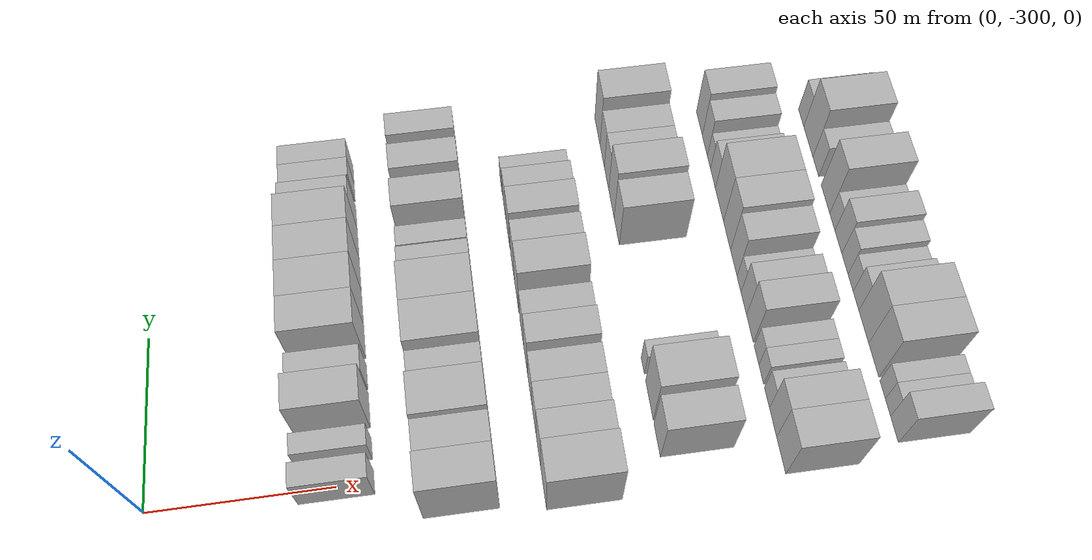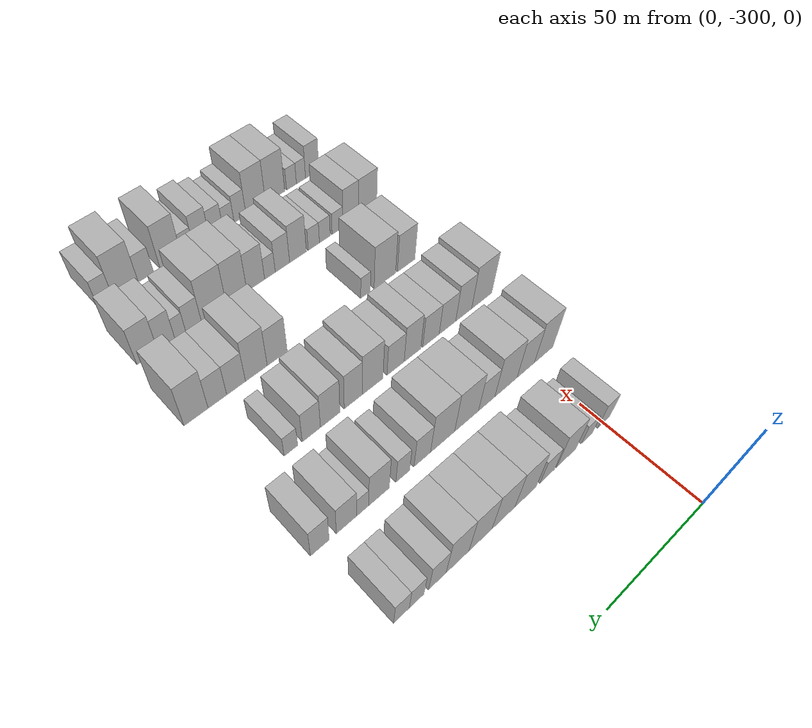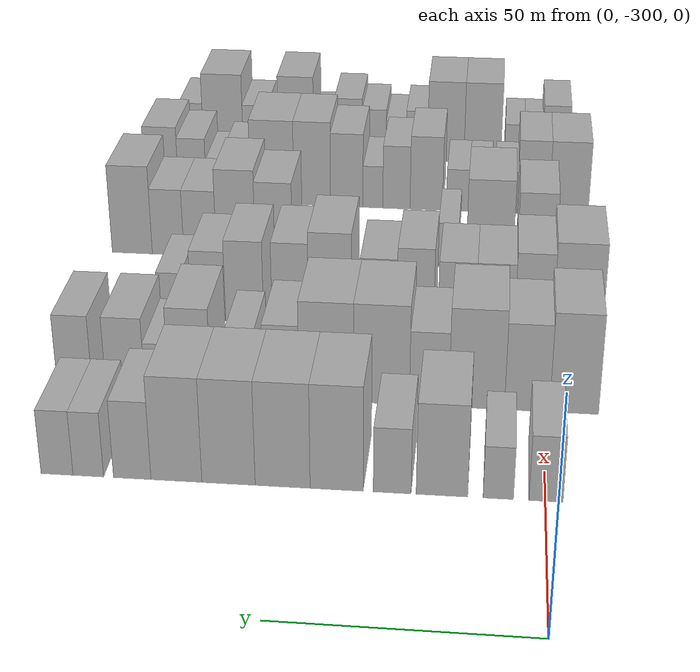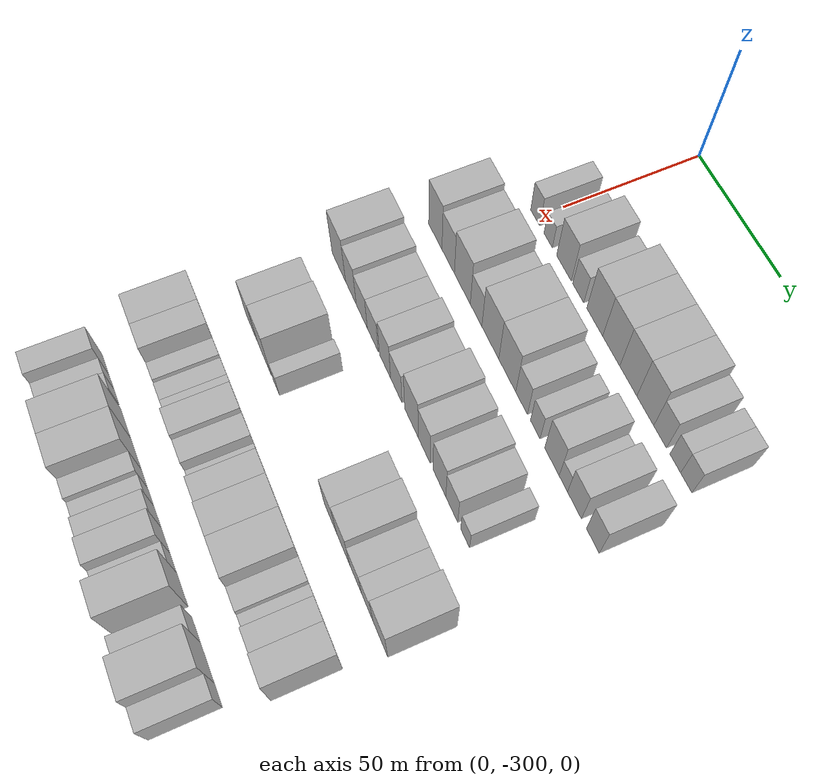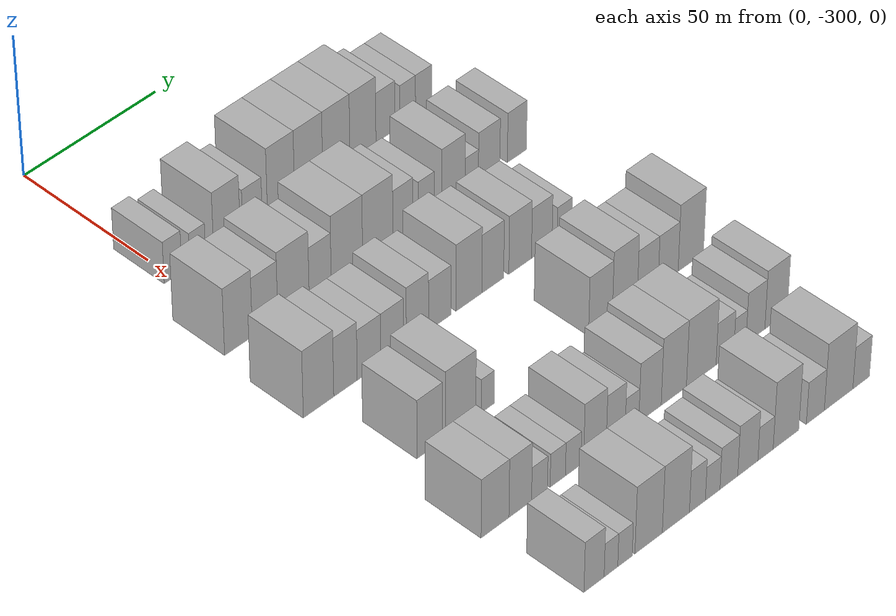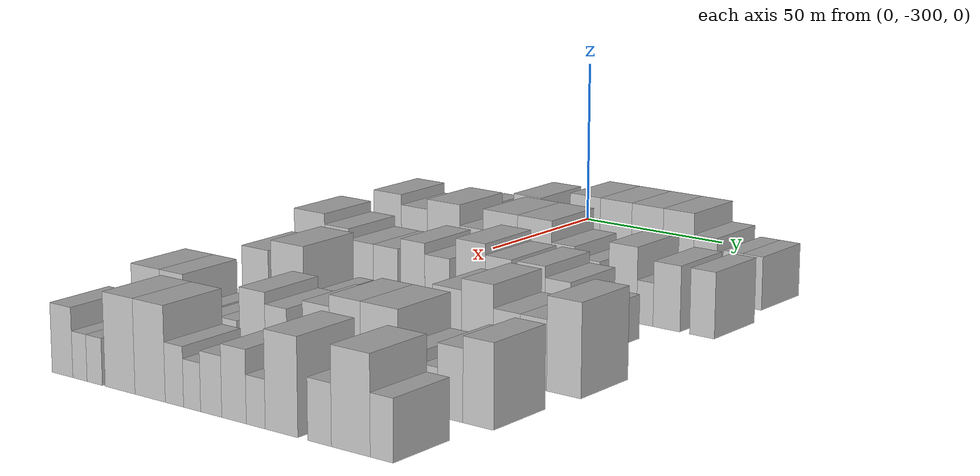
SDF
<sdf version="1.6">
 <world name="default">
  <model name="building_26">
   <static>1</static>
   <pose>50.0000 -300.0668 0 0.000000 0.000000 0.000000</pose>
   <link name="link">
    <pose>0 0 7.50 0 0 0</pose>
    <collision name="collision"><geometry><box><size>20.0000 6.5799 15.0000</size></box></geometry></collision>
    <visual name="visual">
     <cast_shadows>0</cast_shadows>
     <geometry><box><size>20.0000 6.5799 15.0000</size></box></geometry>
     <material>
      <script>
       <uri>model://HANNAS_wall/materials/scripts</uri>
       <uri>model://HANNAS_wall/materials/textures</uri>
       <name>vrc/HANNAS_wall</name>
      </script>
     </material>
    </visual>
   </link>
  </model>
  <model name="building_27">
   <static>1</static>
   <pose>50.0000 -290.8324 0 0.000000 0.000000 0.000000</pose>
   <link name="link">
    <pose>0 0 6.00 0 0 0</pose>
    <collision name="collision"><geometry><box><size>20.0000 5.8889 12.0000</size></box></geometry></collision>
    <visual name="visual">
     <cast_shadows>0</cast_shadows>
     <geometry><box><size>20.0000 5.8889 12.0000</size></box></geometry>
     <material>
      <script>
       <uri>model://HANNAS_wall/materials/scripts</uri>
       <uri>model://HANNAS_wall/materials/textures</uri>
       <name>vrc/HANNAS_wall</name>
      </script>
     </material>
    </visual>
   </link>
  </model>
  <model name="building_28">
   <static>1</static>
   <pose>50.0000 -279.8640 0 0.000000 0.000000 0.000000</pose>
   <link name="link">
    <pose>0 0 10.50 0 0 0</pose>
    <collision name="collision"><geometry><box><size>20.0000 10.0480 21.0000</size></box></geometry></collision>
    <visual name="visual">
     <cast_shadows>0</cast_shadows>
     <geometry><box><size>20.0000 10.0480 21.0000</size></box></geometry>
     <material>
      <script>
       <uri>model://HANNAS_wall/materials/scripts</uri>
       <uri>model://HANNAS_wall/materials/textures</uri>
       <name>vrc/HANNAS_wall</name>
      </script>
     </material>
    </visual>
   </link>
  </model>
  <model name="building_29">
   <static>1</static>
   <pose>50.0000 -270.1404 0 0.000000 0.000000 0.000000</pose>
   <link name="link">
    <pose>0 0 7.50 0 0 0</pose>
    <collision name="collision"><geometry><box><size>20.0000 7.3992 15.0000</size></box></geometry></collision>
    <visual name="visual">
     <cast_shadows>0</cast_shadows>
     <geometry><box><size>20.0000 7.3992 15.0000</size></box></geometry>
     <material>
      <script>
       <uri>model://HANNAS_wall/materials/scripts</uri>
       <uri>model://HANNAS_wall/materials/textures</uri>
       <name>vrc/HANNAS_wall</name>
      </script>
     </material>
    </visual>
   </link>
  </model>
  <model name="building_30">
   <static>1</static>
   <pose>50.0000 -259.2145 0 0.000000 0.000000 0.000000</pose>
   <link name="link">
    <pose>0 0 12.00 0 0 0</pose>
    <collision name="collision"><geometry><box><size>20.0000 10.4526 24.0000</size></box></geometry></collision>
    <visual name="visual">
     <cast_shadows>0</cast_shadows>
     <geometry><box><size>20.0000 10.4526 24.0000</size></box></geometry>
     <material>
      <script>
       <uri>model://HANNAS_wall/materials/scripts</uri>
       <uri>model://HANNAS_wall/materials/textures</uri>
       <name>vrc/HANNAS_wall</name>
      </script>
     </material>
    </visual>
   </link>
  </model>
  <model name="building_31">
   <static>1</static>
   <pose>50.0000 -248.5436 0 0.000000 0.000000 0.000000</pose>
   <link name="link">
    <pose>0 0 12.00 0 0 0</pose>
    <collision name="collision"><geometry><box><size>20.0000 10.8893 24.0000</size></box></geometry></collision>
    <visual name="visual">
     <cast_shadows>0</cast_shadows>
     <geometry><box><size>20.0000 10.8893 24.0000</size></box></geometry>
     <material>
      <script>
       <uri>model://HANNAS_wall/materials/scripts</uri>
       <uri>model://HANNAS_wall/materials/textures</uri>
       <name>vrc/HANNAS_wall</name>
      </script>
     </material>
    </visual>
   </link>
  </model>
  <model name="building_32">
   <static>1</static>
   <pose>50.0000 -237.7849 0 0.000000 0.000000 0.000000</pose>
   <link name="link">
    <pose>0 0 12.00 0 0 0</pose>
    <collision name="collision"><geometry><box><size>20.0000 10.6280 24.0000</size></box></geometry></collision>
    <visual name="visual">
     <cast_shadows>0</cast_shadows>
     <geometry><box><size>20.0000 10.6280 24.0000</size></box></geometry>
     <material>
      <script>
       <uri>model://HANNAS_wall/materials/scripts</uri>
       <uri>model://HANNAS_wall/materials/textures</uri>
       <name>vrc/HANNAS_wall</name>
      </script>
     </material>
    </visual>
   </link>
  </model>
  <model name="building_33">
   <static>1</static>
   <pose>50.0000 -227.3663 0 0.000000 0.000000 0.000000</pose>
   <link name="link">
    <pose>0 0 12.00 0 0 0</pose>
    <collision name="collision"><geometry><box><size>20.0000 10.2093 24.0000</size></box></geometry></collision>
    <visual name="visual">
     <cast_shadows>0</cast_shadows>
     <geometry><box><size>20.0000 10.2093 24.0000</size></box></geometry>
     <material>
      <script>
       <uri>model://HANNAS_wall/materials/scripts</uri>
       <uri>model://HANNAS_wall/materials/textures</uri>
       <name>vrc/HANNAS_wall</name>
      </script>
     </material>
    </visual>
   </link>
  </model>
  <model name="building_34">
   <static>1</static>
   <pose>50.0000 -218.4926 0 0.000000 0.000000 0.000000</pose>
   <link name="link">
    <pose>0 0 9.00 0 0 0</pose>
    <collision name="collision"><geometry><box><size>20.0000 7.5381 18.0000</size></box></geometry></collision>
    <visual name="visual">
     <cast_shadows>0</cast_shadows>
     <geometry><box><size>20.0000 7.5381 18.0000</size></box></geometry>
     <material>
      <script>
       <uri>model://HANNAS_wall/materials/scripts</uri>
       <uri>model://HANNAS_wall/materials/textures</uri>
       <name>vrc/HANNAS_wall</name>
      </script>
     </material>
    </visual>
   </link>
  </model>
  <model name="building_35">
   <static>1</static>
   <pose>50.0000 -209.6279 0 0.000000 0.000000 0.000000</pose>
   <link name="link">
    <pose>0 0 7.50 0 0 0</pose>
    <collision name="collision"><geometry><box><size>20.0000 6.1912 15.0000</size></box></geometry></collision>
    <visual name="visual">
     <cast_shadows>0</cast_shadows>
     <geometry><box><size>20.0000 6.1912 15.0000</size></box></geometry>
     <material>
      <script>
       <uri>model://HANNAS_wall/materials/scripts</uri>
       <uri>model://HANNAS_wall/materials/textures</uri>
       <name>vrc/HANNAS_wall</name>
      </script>
     </material>
    </visual>
   </link>
  </model>
  <model name="building_36">
   <static>1</static>
   <pose>50.0000 -203.2886 0 0.000000 0.000000 0.000000</pose>
   <link name="link">
    <pose>0 0 7.50 0 0 0</pose>
    <collision name="collision"><geometry><box><size>20.0000 6.4872 15.0000</size></box></geometry></collision>
    <visual name="visual">
     <cast_shadows>0</cast_shadows>
     <geometry><box><size>20.0000 6.4872 15.0000</size></box></geometry>
     <material>
      <script>
       <uri>model://HANNAS_wall/materials/scripts</uri>
       <uri>model://HANNAS_wall/materials/textures</uri>
       <name>vrc/HANNAS_wall</name>
      </script>
     </material>
    </visual>
   </link>
  </model>
  <model name="building_148">
   <static>1</static>
   <pose>82.0000 -306.3747 0 0.000000 0.000000 0.000000</pose>
   <link name="link">
    <pose>0 0 12.00 0 0 0</pose>
    <collision name="collision"><geometry><box><size>20.0000 10.2944 24.0000</size></box></geometry></collision>
    <visual name="visual">
     <cast_shadows>0</cast_shadows>
     <geometry><box><size>20.0000 10.2944 24.0000</size></box></geometry>
     <material>
      <script>
       <uri>model://HANNAS_wall/materials/scripts</uri>
       <uri>model://HANNAS_wall/materials/textures</uri>
       <name>vrc/HANNAS_wall</name>
      </script>
     </material>
    </visual>
   </link>
  </model>
  <model name="building_149">
   <static>1</static>
   <pose>82.0000 -296.4743 0 0.000000 0.000000 0.000000</pose>
   <link name="link">
    <pose>0 0 10.50 0 0 0</pose>
    <collision name="collision"><geometry><box><size>20.0000 9.5065 21.0000</size></box></geometry></collision>
    <visual name="visual">
     <cast_shadows>0</cast_shadows>
     <geometry><box><size>20.0000 9.5065 21.0000</size></box></geometry>
     <material>
      <script>
       <uri>model://HANNAS_wall/materials/scripts</uri>
       <uri>model://HANNAS_wall/materials/textures</uri>
       <name>vrc/HANNAS_wall</name>
      </script>
     </material>
    </visual>
   </link>
  </model>
  <model name="building_150">
   <static>1</static>
   <pose>82.0000 -285.8236 0 0.000000 0.000000 0.000000</pose>
   <link name="link">
    <pose>0 0 12.00 0 0 0</pose>
    <collision name="collision"><geometry><box><size>20.0000 11.7950 24.0000</size></box></geometry></collision>
    <visual name="visual">
     <cast_shadows>0</cast_shadows>
     <geometry><box><size>20.0000 11.7950 24.0000</size></box></geometry>
     <material>
      <script>
       <uri>model://HANNAS_wall/materials/scripts</uri>
       <uri>model://HANNAS_wall/materials/textures</uri>
       <name>vrc/HANNAS_wall</name>
      </script>
     </material>
    </visual>
   </link>
  </model>
  <model name="building_151">
   <static>1</static>
   <pose>82.0000 -275.7366 0 0.000000 0.000000 0.000000</pose>
   <link name="link">
    <pose>0 0 9.00 0 0 0</pose>
    <collision name="collision"><geometry><box><size>20.0000 8.3790 18.0000</size></box></geometry></collision>
    <visual name="visual">
     <cast_shadows>0</cast_shadows>
     <geometry><box><size>20.0000 8.3790 18.0000</size></box></geometry>
     <material>
      <script>
       <uri>model://HANNAS_wall/materials/scripts</uri>
       <uri>model://HANNAS_wall/materials/textures</uri>
       <name>vrc/HANNAS_wall</name>
      </script>
     </material>
    </visual>
   </link>
  </model>
  <model name="building_152">
   <static>1</static>
   <pose>82.0000 -265.5523 0 0.000000 0.000000 0.000000</pose>
   <link name="link">
    <pose>0 0 12.00 0 0 0</pose>
    <collision name="collision"><geometry><box><size>20.0000 11.9894 24.0000</size></box></geometry></collision>
    <visual name="visual">
     <cast_shadows>0</cast_shadows>
     <geometry><box><size>20.0000 11.9894 24.0000</size></box></geometry>
     <material>
      <script>
       <uri>model://HANNAS_wall/materials/scripts</uri>
       <uri>model://HANNAS_wall/materials/textures</uri>
       <name>vrc/HANNAS_wall</name>
      </script>
     </material>
    </visual>
   </link>
  </model>
  <model name="building_153">
   <static>1</static>
   <pose>82.0000 -253.7150 0 0.000000 0.000000 0.000000</pose>
   <link name="link">
    <pose>0 0 12.00 0 0 0</pose>
    <collision name="collision"><geometry><box><size>20.0000 11.6852 24.0000</size></box></geometry></collision>
    <visual name="visual">
     <cast_shadows>0</cast_shadows>
     <geometry><box><size>20.0000 11.6852 24.0000</size></box></geometry>
     <material>
      <script>
       <uri>model://HANNAS_wall/materials/scripts</uri>
       <uri>model://HANNAS_wall/materials/textures</uri>
       <name>vrc/HANNAS_wall</name>
      </script>
     </material>
    </visual>
   </link>
  </model>
  <model name="building_154">
   <static>1</static>
   <pose>82.0000 -243.9705 0 0.000000 0.000000 0.000000</pose>
   <link name="link">
    <pose>0 0 9.00 0 0 0</pose>
    <collision name="collision"><geometry><box><size>20.0000 7.8038 18.0000</size></box></geometry></collision>
    <visual name="visual">
     <cast_shadows>0</cast_shadows>
     <geometry><box><size>20.0000 7.8038 18.0000</size></box></geometry>
     <material>
      <script>
       <uri>model://HANNAS_wall/materials/scripts</uri>
       <uri>model://HANNAS_wall/materials/textures</uri>
       <name>vrc/HANNAS_wall</name>
      </script>
     </material>
    </visual>
   </link>
  </model>
  <model name="building_155">
   <static>1</static>
   <pose>82.0000 -234.9207 0 0.000000 0.000000 0.000000</pose>
   <link name="link">
    <pose>0 0 7.50 0 0 0</pose>
    <collision name="collision"><geometry><box><size>20.0000 6.2957 15.0000</size></box></geometry></collision>
    <visual name="visual">
     <cast_shadows>0</cast_shadows>
     <geometry><box><size>20.0000 6.2957 15.0000</size></box></geometry>
     <material>
      <script>
       <uri>model://HANNAS_wall/materials/scripts</uri>
       <uri>model://HANNAS_wall/materials/textures</uri>
       <name>vrc/HANNAS_wall</name>
      </script>
     </material>
    </visual>
   </link>
  </model>
  <model name="building_156">
   <static>1</static>
   <pose>82.0000 -224.1626 0 0.000000 0.000000 0.000000</pose>
   <link name="link">
    <pose>0 0 10.50 0 0 0</pose>
    <collision name="collision"><geometry><box><size>20.0000 9.2204 21.0000</size></box></geometry></collision>
    <visual name="visual">
     <cast_shadows>0</cast_shadows>
     <geometry><box><size>20.0000 9.2204 21.0000</size></box></geometry>
     <material>
      <script>
       <uri>model://HANNAS_wall/materials/scripts</uri>
       <uri>model://HANNAS_wall/materials/textures</uri>
       <name>vrc/HANNAS_wall</name>
      </script>
     </material>
    </visual>
   </link>
  </model>
  <model name="building_157">
   <static>1</static>
   <pose>82.0000 -216.9365 0 0.000000 0.000000 0.000000</pose>
   <link name="link">
    <pose>0 0 6.00 0 0 0</pose>
    <collision name="collision"><geometry><box><size>20.0000 5.2320 12.0000</size></box></geometry></collision>
    <visual name="visual">
     <cast_shadows>0</cast_shadows>
     <geometry><box><size>20.0000 5.2320 12.0000</size></box></geometry>
     <material>
      <script>
       <uri>model://HANNAS_wall/materials/scripts</uri>
       <uri>model://HANNAS_wall/materials/textures</uri>
       <name>vrc/HANNAS_wall</name>
      </script>
     </material>
    </visual>
   </link>
  </model>
  <model name="building_158">
   <static>1</static>
   <pose>82.0000 -210.0412 0 0.000000 0.000000 0.000000</pose>
   <link name="link">
    <pose>0 0 9.00 0 0 0</pose>
    <collision name="collision"><geometry><box><size>20.0000 8.5585 18.0000</size></box></geometry></collision>
    <visual name="visual">
     <cast_shadows>0</cast_shadows>
     <geometry><box><size>20.0000 8.5585 18.0000</size></box></geometry>
     <material>
      <script>
       <uri>model://HANNAS_wall/materials/scripts</uri>
       <uri>model://HANNAS_wall/materials/textures</uri>
       <name>vrc/HANNAS_wall</name>
      </script>
     </material>
    </visual>
   </link>
  </model>
  <model name="building_159">
   <static>1</static>
   <pose>82.0000 -198.9144 0 0.000000 0.000000 0.000000</pose>
   <link name="link">
    <pose>0 0 9.00 0 0 0</pose>
    <collision name="collision"><geometry><box><size>20.0000 7.6950 18.0000</size></box></geometry></collision>
    <visual name="visual">
     <cast_shadows>0</cast_shadows>
     <geometry><box><size>20.0000 7.6950 18.0000</size></box></geometry>
     <material>
      <script>
       <uri>model://HANNAS_wall/materials/scripts</uri>
       <uri>model://HANNAS_wall/materials/textures</uri>
       <name>vrc/HANNAS_wall</name>
      </script>
     </material>
    </visual>
   </link>
  </model>
  <model name="building_262">
   <static>1</static>
   <pose>114.0000 -308.0251 0 0.000000 0.000000 0.000000</pose>
   <link name="link">
    <pose>0 0 12.00 0 0 0</pose>
    <collision name="collision"><geometry><box><size>20.0000 11.2781 24.0000</size></box></geometry></collision>
    <visual name="visual">
     <cast_shadows>0</cast_shadows>
     <geometry><box><size>20.0000 11.2781 24.0000</size></box></geometry>
     <material>
      <script>
       <uri>model://HANNAS_wall/materials/scripts</uri>
       <uri>model://HANNAS_wall/materials/textures</uri>
       <name>vrc/HANNAS_wall</name>
      </script>
     </material>
    </visual>
   </link>
  </model>
  <model name="building_263">
   <static>1</static>
   <pose>114.0000 -298.0121 0 0.000000 0.000000 0.000000</pose>
   <link name="link">
    <pose>0 0 10.50 0 0 0</pose>
    <collision name="collision"><geometry><box><size>20.0000 8.7480 21.0000</size></box></geometry></collision>
    <visual name="visual">
     <cast_shadows>0</cast_shadows>
     <geometry><box><size>20.0000 8.7480 21.0000</size></box></geometry>
     <material>
      <script>
       <uri>model://HANNAS_wall/materials/scripts</uri>
       <uri>model://HANNAS_wall/materials/textures</uri>
       <name>vrc/HANNAS_wall</name>
      </script>
     </material>
    </visual>
   </link>
  </model>
  <model name="building_264">
   <static>1</static>
   <pose>114.0000 -289.2091 0 0.000000 0.000000 0.000000</pose>
   <link name="link">
    <pose>0 0 9.00 0 0 0</pose>
    <collision name="collision"><geometry><box><size>20.0000 8.8582 18.0000</size></box></geometry></collision>
    <visual name="visual">
     <cast_shadows>0</cast_shadows>
     <geometry><box><size>20.0000 8.8582 18.0000</size></box></geometry>
     <material>
      <script>
       <uri>model://HANNAS_wall/materials/scripts</uri>
       <uri>model://HANNAS_wall/materials/textures</uri>
       <name>vrc/HANNAS_wall</name>
      </script>
     </material>
    </visual>
   </link>
  </model>
  <model name="building_265">
   <static>1</static>
   <pose>114.0000 -280.4584 0 0.000000 0.000000 0.000000</pose>
   <link name="link">
    <pose>0 0 9.00 0 0 0</pose>
    <collision name="collision"><geometry><box><size>20.0000 8.6431 18.0000</size></box></geometry></collision>
    <visual name="visual">
     <cast_shadows>0</cast_shadows>
     <geometry><box><size>20.0000 8.6431 18.0000</size></box></geometry>
     <material>
      <script>
       <uri>model://HANNAS_wall/materials/scripts</uri>
       <uri>model://HANNAS_wall/materials/textures</uri>
       <name>vrc/HANNAS_wall</name>
      </script>
     </material>
    </visual>
   </link>
  </model>
  <model name="building_266">
   <static>1</static>
   <pose>114.0000 -270.9076 0 0.000000 0.000000 0.000000</pose>
   <link name="link">
    <pose>0 0 10.50 0 0 0</pose>
    <collision name="collision"><geometry><box><size>20.0000 8.4585 21.0000</size></box></geometry></collision>
    <visual name="visual">
     <cast_shadows>0</cast_shadows>
     <geometry><box><size>20.0000 8.4585 21.0000</size></box></geometry>
     <material>
      <script>
       <uri>model://HANNAS_wall/materials/scripts</uri>
       <uri>model://HANNAS_wall/materials/textures</uri>
       <name>vrc/HANNAS_wall</name>
      </script>
     </material>
    </visual>
   </link>
  </model>
  <model name="building_267">
   <static>1</static>
   <pose>114.0000 -262.4029 0 0.000000 0.000000 0.000000</pose>
   <link name="link">
    <pose>0 0 9.00 0 0 0</pose>
    <collision name="collision"><geometry><box><size>20.0000 8.5508 18.0000</size></box></geometry></collision>
    <visual name="visual">
     <cast_shadows>0</cast_shadows>
     <geometry><box><size>20.0000 8.5508 18.0000</size></box></geometry>
     <material>
      <script>
       <uri>model://HANNAS_wall/materials/scripts</uri>
       <uri>model://HANNAS_wall/materials/textures</uri>
       <name>vrc/HANNAS_wall</name>
      </script>
     </material>
    </visual>
   </link>
  </model>
  <model name="building_268">
   <static>1</static>
   <pose>114.0000 -251.1350 0 0.000000 0.000000 0.000000</pose>
   <link name="link">
    <pose>0 0 12.00 0 0 0</pose>
    <collision name="collision"><geometry><box><size>20.0000 9.9850 24.0000</size></box></geometry></collision>
    <visual name="visual">
     <cast_shadows>0</cast_shadows>
     <geometry><box><size>20.0000 9.9850 24.0000</size></box></geometry>
     <material>
      <script>
       <uri>model://HANNAS_wall/materials/scripts</uri>
       <uri>model://HANNAS_wall/materials/textures</uri>
       <name>vrc/HANNAS_wall</name>
      </script>
     </material>
    </visual>
   </link>
  </model>
  <model name="building_269">
   <static>1</static>
   <pose>114.0000 -241.8913 0 0.000000 0.000000 0.000000</pose>
   <link name="link">
    <pose>0 0 10.50 0 0 0</pose>
    <collision name="collision"><geometry><box><size>20.0000 8.5023 21.0000</size></box></geometry></collision>
    <visual name="visual">
     <cast_shadows>0</cast_shadows>
     <geometry><box><size>20.0000 8.5023 21.0000</size></box></geometry>
     <material>
      <script>
       <uri>model://HANNAS_wall/materials/scripts</uri>
       <uri>model://HANNAS_wall/materials/textures</uri>
       <name>vrc/HANNAS_wall</name>
      </script>
     </material>
    </visual>
   </link>
  </model>
  <model name="building_270">
   <static>1</static>
   <pose>114.0000 -231.1867 0 0.000000 0.000000 0.000000</pose>
   <link name="link">
    <pose>0 0 10.50 0 0 0</pose>
    <collision name="collision"><geometry><box><size>20.0000 8.9070 21.0000</size></box></geometry></collision>
    <visual name="visual">
     <cast_shadows>0</cast_shadows>
     <geometry><box><size>20.0000 8.9070 21.0000</size></box></geometry>
     <material>
      <script>
       <uri>model://HANNAS_wall/materials/scripts</uri>
       <uri>model://HANNAS_wall/materials/textures</uri>
       <name>vrc/HANNAS_wall</name>
      </script>
     </material>
    </visual>
   </link>
  </model>
  <model name="building_271">
   <static>1</static>
   <pose>114.0000 -222.6720 0 0.000000 0.000000 0.000000</pose>
   <link name="link">
    <pose>0 0 9.00 0 0 0</pose>
    <collision name="collision"><geometry><box><size>20.0000 8.1222 18.0000</size></box></geometry></collision>
    <visual name="visual">
     <cast_shadows>0</cast_shadows>
     <geometry><box><size>20.0000 8.1222 18.0000</size></box></geometry>
     <material>
      <script>
       <uri>model://HANNAS_wall/materials/scripts</uri>
       <uri>model://HANNAS_wall/materials/textures</uri>
       <name>vrc/HANNAS_wall</name>
      </script>
     </material>
    </visual>
   </link>
  </model>
  <model name="building_272">
   <static>1</static>
   <pose>114.0000 -213.6650 0 0.000000 0.000000 0.000000</pose>
   <link name="link">
    <pose>0 0 6.00 0 0 0</pose>
    <collision name="collision"><geometry><box><size>20.0000 5.8919 12.0000</size></box></geometry></collision>
    <visual name="visual">
     <cast_shadows>0</cast_shadows>
     <geometry><box><size>20.0000 5.8919 12.0000</size></box></geometry>
     <material>
      <script>
       <uri>model://HANNAS_wall/materials/scripts</uri>
       <uri>model://HANNAS_wall/materials/textures</uri>
       <name>vrc/HANNAS_wall</name>
      </script>
     </material>
    </visual>
   </link>
  </model>
  <model name="building_382">
   <static>1</static>
   <pose>146.0000 -298.9095 0 0.000000 0.000000 0.000000</pose>
   <link name="link">
    <pose>0 0 10.50 0 0 0</pose>
    <collision name="collision"><geometry><box><size>20.0000 9.5412 21.0000</size></box></geometry></collision>
    <visual name="visual">
     <cast_shadows>0</cast_shadows>
     <geometry><box><size>20.0000 9.5412 21.0000</size></box></geometry>
     <material>
      <script>
       <uri>model://HANNAS_wall/materials/scripts</uri>
       <uri>model://HANNAS_wall/materials/textures</uri>
       <name>vrc/HANNAS_wall</name>
      </script>
     </material>
    </visual>
   </link>
  </model>
  <model name="building_383">
   <static>1</static>
   <pose>146.0000 -287.3825 0 0.000000 0.000000 0.000000</pose>
   <link name="link">
    <pose>0 0 12.00 0 0 0</pose>
    <collision name="collision"><geometry><box><size>20.0000 11.5128 24.0000</size></box></geometry></collision>
    <visual name="visual">
     <cast_shadows>0</cast_shadows>
     <geometry><box><size>20.0000 11.5128 24.0000</size></box></geometry>
     <material>
      <script>
       <uri>model://HANNAS_wall/materials/scripts</uri>
       <uri>model://HANNAS_wall/materials/textures</uri>
       <name>vrc/HANNAS_wall</name>
      </script>
     </material>
    </visual>
   </link>
  </model>
  <model name="building_384">
   <static>1</static>
   <pose>146.0000 -277.1315 0 0.000000 0.000000 0.000000</pose>
   <link name="link">
    <pose>0 0 6.00 0 0 0</pose>
    <collision name="collision"><geometry><box><size>20.0000 4.9892 12.0000</size></box></geometry></collision>
    <visual name="visual">
     <cast_shadows>0</cast_shadows>
     <geometry><box><size>20.0000 4.9892 12.0000</size></box></geometry>
     <material>
      <script>
       <uri>model://HANNAS_wall/materials/scripts</uri>
       <uri>model://HANNAS_wall/materials/textures</uri>
       <name>vrc/HANNAS_wall</name>
      </script>
     </material>
    </visual>
   </link>
  </model>
  <model name="building_385">
   <static>1</static>
   <pose>146.0000 -233.6439 0 0.000000 0.000000 0.000000</pose>
   <link name="link">
    <pose>0 0 10.50 0 0 0</pose>
    <collision name="collision"><geometry><box><size>20.0000 9.3287 21.0000</size></box></geometry></collision>
    <visual name="visual">
     <cast_shadows>0</cast_shadows>
     <geometry><box><size>20.0000 9.3287 21.0000</size></box></geometry>
     <material>
      <script>
       <uri>model://HANNAS_wall/materials/scripts</uri>
       <uri>model://HANNAS_wall/materials/textures</uri>
       <name>vrc/HANNAS_wall</name>
      </script>
     </material>
    </visual>
   </link>
  </model>
  <model name="building_386">
   <static>1</static>
   <pose>146.0000 -224.0464 0 0.000000 0.000000 0.000000</pose>
   <link name="link">
    <pose>0 0 12.00 0 0 0</pose>
    <collision name="collision"><geometry><box><size>20.0000 9.8665 24.0000</size></box></geometry></collision>
    <visual name="visual">
     <cast_shadows>0</cast_shadows>
     <geometry><box><size>20.0000 9.8665 24.0000</size></box></geometry>
     <material>
      <script>
       <uri>model://HANNAS_wall/materials/scripts</uri>
       <uri>model://HANNAS_wall/materials/textures</uri>
       <name>vrc/HANNAS_wall</name>
      </script>
     </material>
    </visual>
   </link>
  </model>
  <model name="building_387">
   <static>1</static>
   <pose>146.0000 -214.9617 0 0.000000 0.000000 0.000000</pose>
   <link name="link">
    <pose>0 0 9.00 0 0 0</pose>
    <collision name="collision"><geometry><box><size>20.0000 8.3029 18.0000</size></box></geometry></collision>
    <visual name="visual">
     <cast_shadows>0</cast_shadows>
     <geometry><box><size>20.0000 8.3029 18.0000</size></box></geometry>
     <material>
      <script>
       <uri>model://HANNAS_wall/materials/scripts</uri>
       <uri>model://HANNAS_wall/materials/textures</uri>
       <name>vrc/HANNAS_wall</name>
      </script>
     </material>
    </visual>
   </link>
  </model>
  <model name="building_388">
   <static>1</static>
   <pose>146.0000 -206.7871 0 0.000000 0.000000 0.000000</pose>
   <link name="link">
    <pose>0 0 9.00 0 0 0</pose>
    <collision name="collision"><geometry><box><size>20.0000 8.0463 18.0000</size></box></geometry></collision>
    <visual name="visual">
     <cast_shadows>0</cast_shadows>
     <geometry><box><size>20.0000 8.0463 18.0000</size></box></geometry>
     <material>
      <script>
       <uri>model://HANNAS_wall/materials/scripts</uri>
       <uri>model://HANNAS_wall/materials/textures</uri>
       <name>vrc/HANNAS_wall</name>
      </script>
     </material>
    </visual>
   </link>
  </model>
  <model name="building_389">
   <static>1</static>
   <pose>146.0000 -197.6470 0 0.000000 0.000000 0.000000</pose>
   <link name="link">
    <pose>0 0 12.00 0 0 0</pose>
    <collision name="collision"><geometry><box><size>20.0000 10.2339 24.0000</size></box></geometry></collision>
    <visual name="visual">
     <cast_shadows>0</cast_shadows>
     <geometry><box><size>20.0000 10.2339 24.0000</size></box></geometry>
     <material>
      <script>
       <uri>model://HANNAS_wall/materials/scripts</uri>
       <uri>model://HANNAS_wall/materials/textures</uri>
       <name>vrc/HANNAS_wall</name>
      </script>
     </material>
    </visual>
   </link>
  </model>
  <model name="building_486">
   <static>1</static>
   <pose>178.0000 -307.6583 0 0.000000 0.000000 0.000000</pose>
   <link name="link">
    <pose>0 0 10.50 0 0 0</pose>
    <collision name="collision"><geometry><box><size>20.0000 10.3229 21.0000</size></box></geometry></collision>
    <visual name="visual">
     <cast_shadows>0</cast_shadows>
     <geometry><box><size>20.0000 10.3229 21.0000</size></box></geometry>
     <material>
      <script>
       <uri>model://HANNAS_wall/materials/scripts</uri>
       <uri>model://HANNAS_wall/materials/textures</uri>
       <name>vrc/HANNAS_wall</name>
      </script>
     </material>
    </visual>
   </link>
  </model>
  <model name="building_487">
   <static>1</static>
   <pose>178.0000 -298.2784 0 0.000000 0.000000 0.000000</pose>
   <link name="link">
    <pose>0 0 10.50 0 0 0</pose>
    <collision name="collision"><geometry><box><size>20.0000 8.4368 21.0000</size></box></geometry></collision>
    <visual name="visual">
     <cast_shadows>0</cast_shadows>
     <geometry><box><size>20.0000 8.4368 21.0000</size></box></geometry>
     <material>
      <script>
       <uri>model://HANNAS_wall/materials/scripts</uri>
       <uri>model://HANNAS_wall/materials/textures</uri>
       <name>vrc/HANNAS_wall</name>
      </script>
     </material>
    </visual>
   </link>
  </model>
  <model name="building_488">
   <static>1</static>
   <pose>178.0000 -291.0827 0 0.000000 0.000000 0.000000</pose>
   <link name="link">
    <pose>0 0 6.00 0 0 0</pose>
    <collision name="collision"><geometry><box><size>20.0000 5.9546 12.0000</size></box></geometry></collision>
    <visual name="visual">
     <cast_shadows>0</cast_shadows>
     <geometry><box><size>20.0000 5.9546 12.0000</size></box></geometry>
     <material>
      <script>
       <uri>model://HANNAS_wall/materials/scripts</uri>
       <uri>model://HANNAS_wall/materials/textures</uri>
       <name>vrc/HANNAS_wall</name>
      </script>
     </material>
    </visual>
   </link>
  </model>
  <model name="building_489">
   <static>1</static>
   <pose>178.0000 -284.2164 0 0.000000 0.000000 0.000000</pose>
   <link name="link">
    <pose>0 0 6.00 0 0 0</pose>
    <collision name="collision"><geometry><box><size>20.0000 5.7781 12.0000</size></box></geometry></collision>
    <visual name="visual">
     <cast_shadows>0</cast_shadows>
     <geometry><box><size>20.0000 5.7781 12.0000</size></box></geometry>
     <material>
      <script>
       <uri>model://HANNAS_wall/materials/scripts</uri>
       <uri>model://HANNAS_wall/materials/textures</uri>
       <name>vrc/HANNAS_wall</name>
      </script>
     </material>
    </visual>
   </link>
  </model>
  <model name="building_490">
   <static>1</static>
   <pose>178.0000 -278.3803 0 0.000000 0.000000 0.000000</pose>
   <link name="link">
    <pose>0 0 6.00 0 0 0</pose>
    <collision name="collision"><geometry><box><size>20.0000 5.8940 12.0000</size></box></geometry></collision>
    <visual name="visual">
     <cast_shadows>0</cast_shadows>
     <geometry><box><size>20.0000 5.8940 12.0000</size></box></geometry>
     <material>
      <script>
       <uri>model://HANNAS_wall/materials/scripts</uri>
       <uri>model://HANNAS_wall/materials/textures</uri>
       <name>vrc/HANNAS_wall</name>
      </script>
     </material>
    </visual>
   </link>
  </model>
  <model name="building_491">
   <static>1</static>
   <pose>178.0000 -270.1168 0 0.000000 0.000000 0.000000</pose>
   <link name="link">
    <pose>0 0 10.50 0 0 0</pose>
    <collision name="collision"><geometry><box><size>20.0000 8.6332 21.0000</size></box></geometry></collision>
    <visual name="visual">
     <cast_shadows>0</cast_shadows>
     <geometry><box><size>20.0000 8.6332 21.0000</size></box></geometry>
     <material>
      <script>
       <uri>model://HANNAS_wall/materials/scripts</uri>
       <uri>model://HANNAS_wall/materials/textures</uri>
       <name>vrc/HANNAS_wall</name>
      </script>
     </material>
    </visual>
   </link>
  </model>
  <model name="building_492">
   <static>1</static>
   <pose>178.0000 -262.1654 0 0.000000 0.000000 0.000000</pose>
   <link name="link">
    <pose>0 0 9.00 0 0 0</pose>
    <collision name="collision"><geometry><box><size>20.0000 7.2695 18.0000</size></box></geometry></collision>
    <visual name="visual">
     <cast_shadows>0</cast_shadows>
     <geometry><box><size>20.0000 7.2695 18.0000</size></box></geometry>
     <material>
      <script>
       <uri>model://HANNAS_wall/materials/scripts</uri>
       <uri>model://HANNAS_wall/materials/textures</uri>
       <name>vrc/HANNAS_wall</name>
      </script>
     </material>
    </visual>
   </link>
  </model>
  <model name="building_493">
   <static>1</static>
   <pose>178.0000 -255.8766 0 0.000000 0.000000 0.000000</pose>
   <link name="link">
    <pose>0 0 6.00 0 0 0</pose>
    <collision name="collision"><geometry><box><size>20.0000 5.3081 12.0000</size></box></geometry></collision>
    <visual name="visual">
     <cast_shadows>0</cast_shadows>
     <geometry><box><size>20.0000 5.3081 12.0000</size></box></geometry>
     <material>
      <script>
       <uri>model://HANNAS_wall/materials/scripts</uri>
       <uri>model://HANNAS_wall/materials/textures</uri>
       <name>vrc/HANNAS_wall</name>
      </script>
     </material>
    </visual>
   </link>
  </model>
  <model name="building_494">
   <static>1</static>
   <pose>178.0000 -248.8813 0 0.000000 0.000000 0.000000</pose>
   <link name="link">
    <pose>0 0 10.50 0 0 0</pose>
    <collision name="collision"><geometry><box><size>20.0000 8.6825 21.0000</size></box></geometry></collision>
    <visual name="visual">
     <cast_shadows>0</cast_shadows>
     <geometry><box><size>20.0000 8.6825 21.0000</size></box></geometry>
     <material>
      <script>
       <uri>model://HANNAS_wall/materials/scripts</uri>
       <uri>model://HANNAS_wall/materials/textures</uri>
       <name>vrc/HANNAS_wall</name>
      </script>
     </material>
    </visual>
   </link>
  </model>
  <model name="building_495">
   <static>1</static>
   <pose>178.0000 -239.6096 0 0.000000 0.000000 0.000000</pose>
   <link name="link">
    <pose>0 0 12.00 0 0 0</pose>
    <collision name="collision"><geometry><box><size>20.0000 9.8610 24.0000</size></box></geometry></collision>
    <visual name="visual">
     <cast_shadows>0</cast_shadows>
     <geometry><box><size>20.0000 9.8610 24.0000</size></box></geometry>
     <material>
      <script>
       <uri>model://HANNAS_wall/materials/scripts</uri>
       <uri>model://HANNAS_wall/materials/textures</uri>
       <name>vrc/HANNAS_wall</name>
      </script>
     </material>
    </visual>
   </link>
  </model>
  <model name="building_496">
   <static>1</static>
   <pose>178.0000 -228.8296 0 0.000000 0.000000 0.000000</pose>
   <link name="link">
    <pose>0 0 12.00 0 0 0</pose>
    <collision name="collision"><geometry><box><size>20.0000 11.6989 24.0000</size></box></geometry></collision>
    <visual name="visual">
     <cast_shadows>0</cast_shadows>
     <geometry><box><size>20.0000 11.6989 24.0000</size></box></geometry>
     <material>
      <script>
       <uri>model://HANNAS_wall/materials/scripts</uri>
       <uri>model://HANNAS_wall/materials/textures</uri>
       <name>vrc/HANNAS_wall</name>
      </script>
     </material>
    </visual>
   </link>
  </model>
  <model name="building_497">
   <static>1</static>
   <pose>178.0000 -219.4477 0 0.000000 0.000000 0.000000</pose>
   <link name="link">
    <pose>0 0 7.50 0 0 0</pose>
    <collision name="collision"><geometry><box><size>20.0000 7.0649 15.0000</size></box></geometry></collision>
    <visual name="visual">
     <cast_shadows>0</cast_shadows>
     <geometry><box><size>20.0000 7.0649 15.0000</size></box></geometry>
     <material>
      <script>
       <uri>model://HANNAS_wall/materials/scripts</uri>
       <uri>model://HANNAS_wall/materials/textures</uri>
       <name>vrc/HANNAS_wall</name>
      </script>
     </material>
    </visual>
   </link>
  </model>
  <model name="building_498">
   <static>1</static>
   <pose>178.0000 -213.4941 0 0.000000 0.000000 0.000000</pose>
   <link name="link">
    <pose>0 0 6.00 0 0 0</pose>
    <collision name="collision"><geometry><box><size>20.0000 4.8422 12.0000</size></box></geometry></collision>
    <visual name="visual">
     <cast_shadows>0</cast_shadows>
     <geometry><box><size>20.0000 4.8422 12.0000</size></box></geometry>
     <material>
      <script>
       <uri>model://HANNAS_wall/materials/scripts</uri>
       <uri>model://HANNAS_wall/materials/textures</uri>
       <name>vrc/HANNAS_wall</name>
      </script>
     </material>
    </visual>
   </link>
  </model>
  <model name="building_499">
   <static>1</static>
   <pose>178.0000 -207.2836 0 0.000000 0.000000 0.000000</pose>
   <link name="link">
    <pose>0 0 9.00 0 0 0</pose>
    <collision name="collision"><geometry><box><size>20.0000 7.5788 18.0000</size></box></geometry></collision>
    <visual name="visual">
     <cast_shadows>0</cast_shadows>
     <geometry><box><size>20.0000 7.5788 18.0000</size></box></geometry>
     <material>
      <script>
       <uri>model://HANNAS_wall/materials/scripts</uri>
       <uri>model://HANNAS_wall/materials/textures</uri>
       <name>vrc/HANNAS_wall</name>
      </script>
     </material>
    </visual>
   </link>
  </model>
  <model name="building_500">
   <static>1</static>
   <pose>178.0000 -198.9794 0 0.000000 0.000000 0.000000</pose>
   <link name="link">
    <pose>0 0 10.50 0 0 0</pose>
    <collision name="collision"><geometry><box><size>20.0000 9.0295 21.0000</size></box></geometry></collision>
    <visual name="visual">
     <cast_shadows>0</cast_shadows>
     <geometry><box><size>20.0000 9.0295 21.0000</size></box></geometry>
     <material>
      <script>
       <uri>model://HANNAS_wall/materials/scripts</uri>
       <uri>model://HANNAS_wall/materials/textures</uri>
       <name>vrc/HANNAS_wall</name>
      </script>
     </material>
    </visual>
   </link>
  </model>
  <model name="building_614">
   <static>1</static>
   <pose>210.0000 -304.7402 0 0.000000 0.000000 0.000000</pose>
   <link name="link">
    <pose>0 0 9.00 0 0 0</pose>
    <collision name="collision"><geometry><box><size>20.0000 7.4961 18.0000</size></box></geometry></collision>
    <visual name="visual">
     <cast_shadows>0</cast_shadows>
     <geometry><box><size>20.0000 7.4961 18.0000</size></box></geometry>
     <material>
      <script>
       <uri>model://HANNAS_wall/materials/scripts</uri>
       <uri>model://HANNAS_wall/materials/textures</uri>
       <name>vrc/HANNAS_wall</name>
      </script>
     </material>
    </visual>
   </link>
  </model>
  <model name="building_615">
   <static>1</static>
   <pose>210.0000 -298.4435 0 0.000000 0.000000 0.000000</pose>
   <link name="link">
    <pose>0 0 6.00 0 0 0</pose>
    <collision name="collision"><geometry><box><size>20.0000 5.0973 12.0000</size></box></geometry></collision>
    <visual name="visual">
     <cast_shadows>0</cast_shadows>
     <geometry><box><size>20.0000 5.0973 12.0000</size></box></geometry>
     <material>
      <script>
       <uri>model://HANNAS_wall/materials/scripts</uri>
       <uri>model://HANNAS_wall/materials/textures</uri>
       <name>vrc/HANNAS_wall</name>
      </script>
     </material>
    </visual>
   </link>
  </model>
  <model name="building_616">
   <static>1</static>
   <pose>210.0000 -293.1802 0 0.000000 0.000000 0.000000</pose>
   <link name="link">
    <pose>0 0 6.00 0 0 0</pose>
    <collision name="collision"><geometry><box><size>20.0000 5.4294 12.0000</size></box></geometry></collision>
    <visual name="visual">
     <cast_shadows>0</cast_shadows>
     <geometry><box><size>20.0000 5.4294 12.0000</size></box></geometry>
     <material>
      <script>
       <uri>model://HANNAS_wall/materials/scripts</uri>
       <uri>model://HANNAS_wall/materials/textures</uri>
       <name>vrc/HANNAS_wall</name>
      </script>
     </material>
    </visual>
   </link>
  </model>
  <model name="building_617">
   <static>1</static>
   <pose>210.0000 -284.2811 0 0.000000 0.000000 0.000000</pose>
   <link name="link">
    <pose>0 0 12.00 0 0 0</pose>
    <collision name="collision"><geometry><box><size>20.0000 10.3689 24.0000</size></box></geometry></collision>
    <visual name="visual">
     <cast_shadows>0</cast_shadows>
     <geometry><box><size>20.0000 10.3689 24.0000</size></box></geometry>
     <material>
      <script>
       <uri>model://HANNAS_wall/materials/scripts</uri>
       <uri>model://HANNAS_wall/materials/textures</uri>
       <name>vrc/HANNAS_wall</name>
      </script>
     </material>
    </visual>
   </link>
  </model>
  <model name="building_618">
   <static>1</static>
   <pose>210.0000 -273.9452 0 0.000000 0.000000 0.000000</pose>
   <link name="link">
    <pose>0 0 12.00 0 0 0</pose>
    <collision name="collision"><geometry><box><size>20.0000 10.3028 24.0000</size></box></geometry></collision>
    <visual name="visual">
     <cast_shadows>0</cast_shadows>
     <geometry><box><size>20.0000 10.3028 24.0000</size></box></geometry>
     <material>
      <script>
       <uri>model://HANNAS_wall/materials/scripts</uri>
       <uri>model://HANNAS_wall/materials/textures</uri>
       <name>vrc/HANNAS_wall</name>
      </script>
     </material>
    </visual>
   </link>
  </model>
  <model name="building_619">
   <static>1</static>
   <pose>210.0000 -265.7308 0 0.000000 0.000000 0.000000</pose>
   <link name="link">
    <pose>0 0 7.50 0 0 0</pose>
    <collision name="collision"><geometry><box><size>20.0000 6.1261 15.0000</size></box></geometry></collision>
    <visual name="visual">
     <cast_shadows>0</cast_shadows>
     <geometry><box><size>20.0000 6.1261 15.0000</size></box></geometry>
     <material>
      <script>
       <uri>model://HANNAS_wall/materials/scripts</uri>
       <uri>model://HANNAS_wall/materials/textures</uri>
       <name>vrc/HANNAS_wall</name>
      </script>
     </material>
    </visual>
   </link>
  </model>
  <model name="building_620">
   <static>1</static>
   <pose>210.0000 -259.8534 0 0.000000 0.000000 0.000000</pose>
   <link name="link">
    <pose>0 0 6.00 0 0 0</pose>
    <collision name="collision"><geometry><box><size>20.0000 5.6286 12.0000</size></box></geometry></collision>
    <visual name="visual">
     <cast_shadows>0</cast_shadows>
     <geometry><box><size>20.0000 5.6286 12.0000</size></box></geometry>
     <material>
      <script>
       <uri>model://HANNAS_wall/materials/scripts</uri>
       <uri>model://HANNAS_wall/materials/textures</uri>
       <name>vrc/HANNAS_wall</name>
      </script>
     </material>
    </visual>
   </link>
  </model>
  <model name="building_621">
   <static>1</static>
   <pose>210.0000 -253.5922 0 0.000000 0.000000 0.000000</pose>
   <link name="link">
    <pose>0 0 7.50 0 0 0</pose>
    <collision name="collision"><geometry><box><size>20.0000 6.8937 15.0000</size></box></geometry></collision>
    <visual name="visual">
     <cast_shadows>0</cast_shadows>
     <geometry><box><size>20.0000 6.8937 15.0000</size></box></geometry>
     <material>
      <script>
       <uri>model://HANNAS_wall/materials/scripts</uri>
       <uri>model://HANNAS_wall/materials/textures</uri>
       <name>vrc/HANNAS_wall</name>
      </script>
     </material>
    </visual>
   </link>
  </model>
  <model name="building_622">
   <static>1</static>
   <pose>210.0000 -246.2157 0 0.000000 0.000000 0.000000</pose>
   <link name="link">
    <pose>0 0 9.00 0 0 0</pose>
    <collision name="collision"><geometry><box><size>20.0000 7.8594 18.0000</size></box></geometry></collision>
    <visual name="visual">
     <cast_shadows>0</cast_shadows>
     <geometry><box><size>20.0000 7.8594 18.0000</size></box></geometry>
     <material>
      <script>
       <uri>model://HANNAS_wall/materials/scripts</uri>
       <uri>model://HANNAS_wall/materials/textures</uri>
       <name>vrc/HANNAS_wall</name>
      </script>
     </material>
    </visual>
   </link>
  </model>
  <model name="building_623">
   <static>1</static>
   <pose>210.0000 -239.3015 0 0.000000 0.000000 0.000000</pose>
   <link name="link">
    <pose>0 0 6.00 0 0 0</pose>
    <collision name="collision"><geometry><box><size>20.0000 5.9689 12.0000</size></box></geometry></collision>
    <visual name="visual">
     <cast_shadows>0</cast_shadows>
     <geometry><box><size>20.0000 5.9689 12.0000</size></box></geometry>
     <material>
      <script>
       <uri>model://HANNAS_wall/materials/scripts</uri>
       <uri>model://HANNAS_wall/materials/textures</uri>
       <name>vrc/HANNAS_wall</name>
      </script>
     </material>
    </visual>
   </link>
  </model>
  <model name="building_624">
   <static>1</static>
   <pose>210.0000 -231.2599 0 0.000000 0.000000 0.000000</pose>
   <link name="link">
    <pose>0 0 12.00 0 0 0</pose>
    <collision name="collision"><geometry><box><size>20.0000 10.1142 24.0000</size></box></geometry></collision>
    <visual name="visual">
     <cast_shadows>0</cast_shadows>
     <geometry><box><size>20.0000 10.1142 24.0000</size></box></geometry>
     <material>
      <script>
       <uri>model://HANNAS_wall/materials/scripts</uri>
       <uri>model://HANNAS_wall/materials/textures</uri>
       <name>vrc/HANNAS_wall</name>
      </script>
     </material>
    </visual>
   </link>
  </model>
  <model name="building_625">
   <static>1</static>
   <pose>210.0000 -219.6276 0 0.000000 0.000000 0.000000</pose>
   <link name="link">
    <pose>0 0 7.50 0 0 0</pose>
    <collision name="collision"><geometry><box><size>20.0000 7.1504 15.0000</size></box></geometry></collision>
    <visual name="visual">
     <cast_shadows>0</cast_shadows>
     <geometry><box><size>20.0000 7.1504 15.0000</size></box></geometry>
     <material>
      <script>
       <uri>model://HANNAS_wall/materials/scripts</uri>
       <uri>model://HANNAS_wall/materials/textures</uri>
       <name>vrc/HANNAS_wall</name>
      </script>
     </material>
    </visual>
   </link>
  </model>
  <model name="building_626">
   <static>1</static>
   <pose>210.0000 -210.3228 0 0.000000 0.000000 0.000000</pose>
   <link name="link">
    <pose>0 0 12.00 0 0 0</pose>
    <collision name="collision"><geometry><box><size>20.0000 11.4592 24.0000</size></box></geometry></collision>
    <visual name="visual">
     <cast_shadows>0</cast_shadows>
     <geometry><box><size>20.0000 11.4592 24.0000</size></box></geometry>
     <material>
      <script>
       <uri>model://HANNAS_wall/materials/scripts</uri>
       <uri>model://HANNAS_wall/materials/textures</uri>
       <name>vrc/HANNAS_wall</name>
      </script>
     </material>
    </visual>
   </link>
  </model>
  <model name="building_627">
   <static>1</static>
   <pose>210.0000 -201.2453 0 0.000000 0.000000 0.000000</pose>
   <link name="link">
    <pose>0 0 7.50 0 0 0</pose>
    <collision name="collision"><geometry><box><size>20.0000 6.6958 15.0000</size></box></geometry></collision>
    <visual name="visual">
     <cast_shadows>0</cast_shadows>
     <geometry><box><size>20.0000 6.6958 15.0000</size></box></geometry>
     <material>
      <script>
       <uri>model://HANNAS_wall/materials/scripts</uri>
       <uri>model://HANNAS_wall/materials/textures</uri>
       <name>vrc/HANNAS_wall</name>
      </script>
     </material>
    </visual>
   </link>
  </model>
 </world>
</sdf>
